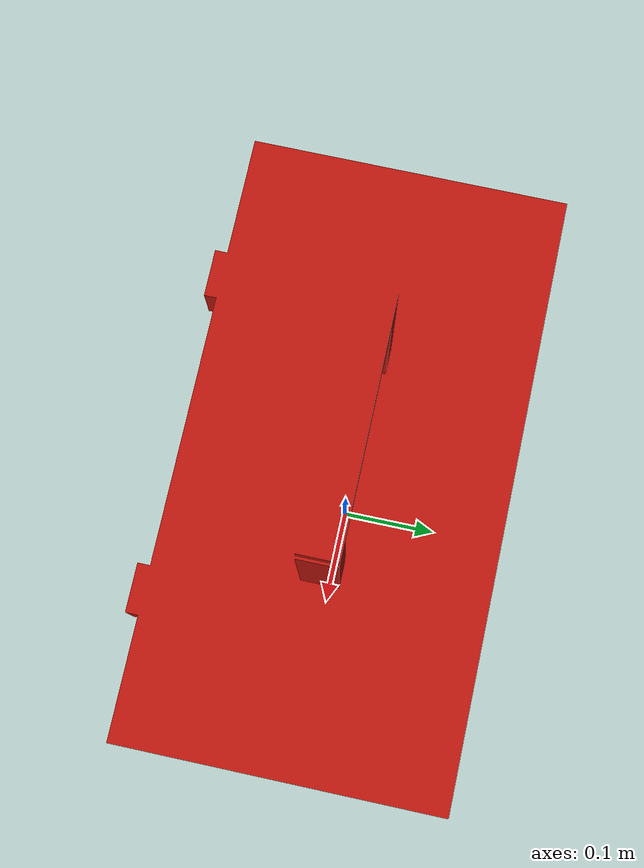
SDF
<?xml version='1.0' encoding='utf-8'?>
<sdf version="1.6">
  <model name="toolbox">
    <static>false</static>
    <link name="link">
      <visual name="detailed_mesh_visual">
        <geometry>
          <mesh>
            <uri>model://toolbox/meshes/toolbox.stl</uri>
          </mesh>
        </geometry>
      <material><ambient>0.72 0.08 0.05 1</ambient><diffuse>0.72 0.08 0.05 1</diffuse><specular>0.08 0.08 0.08 1</specular></material></visual>
      <inertial>
        <mass>1.5</mass>
        <inertia>
          <ixx>0.038925</ixx>
          <iyy>0.070312</iyy>
          <izz>0.058612</izz>
          <ixy>0</ixy>
          <ixz>0</ixz>
          <iyz>0</iyz>
        </inertia>
      </inertial>
      <collision name="body_collision">
        <pose>0 0 0.12 0 0 0</pose>
        <geometry>
          <box>
            <size>0.55 0.28 0.24</size>
          </box>
        </geometry>
      </collision>
      <collision name="lid_collision">
        <pose>0 0 0.26 0 0 0</pose>
        <geometry>
          <box>
            <size>0.57 0.30 0.05</size>
          </box>
        </geometry>
      </collision>
      <collision name="handle_collision">
        <pose>0 0 0.37 0 0 0</pose>
        <geometry>
          <box>
            <size>0.20 0.04 0.12</size>
          </box>
        </geometry>
      </collision>
    </link>
  </model>
</sdf>
